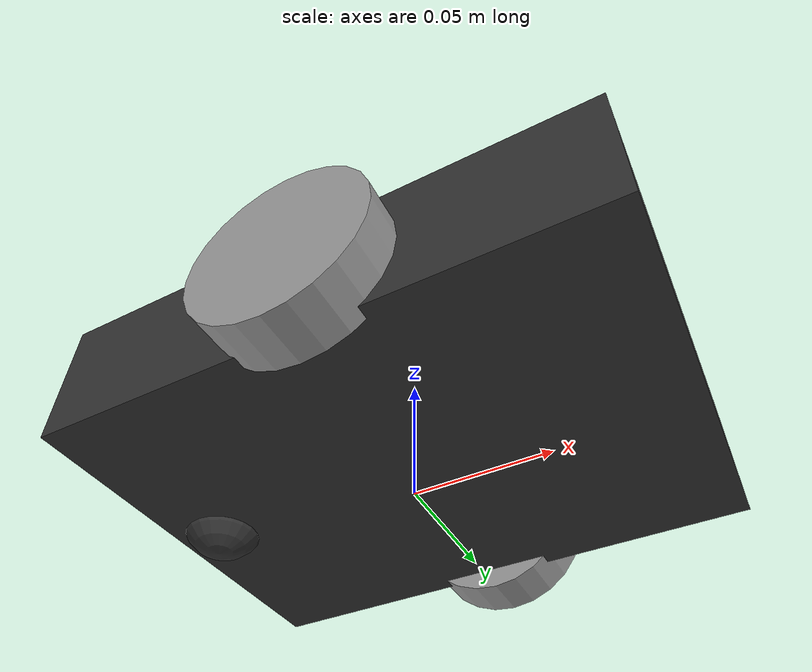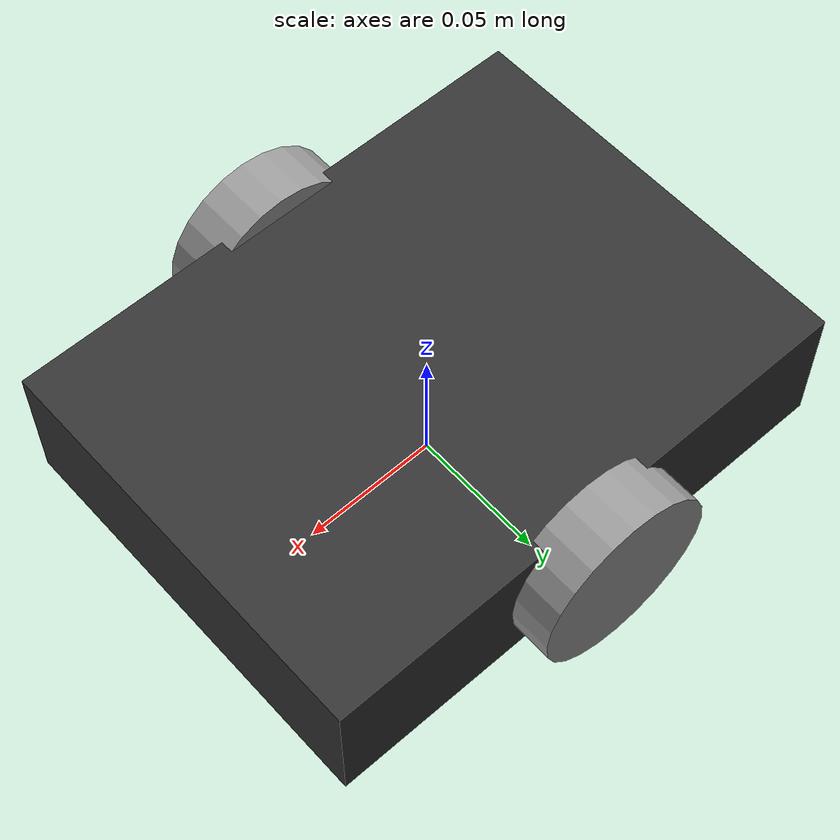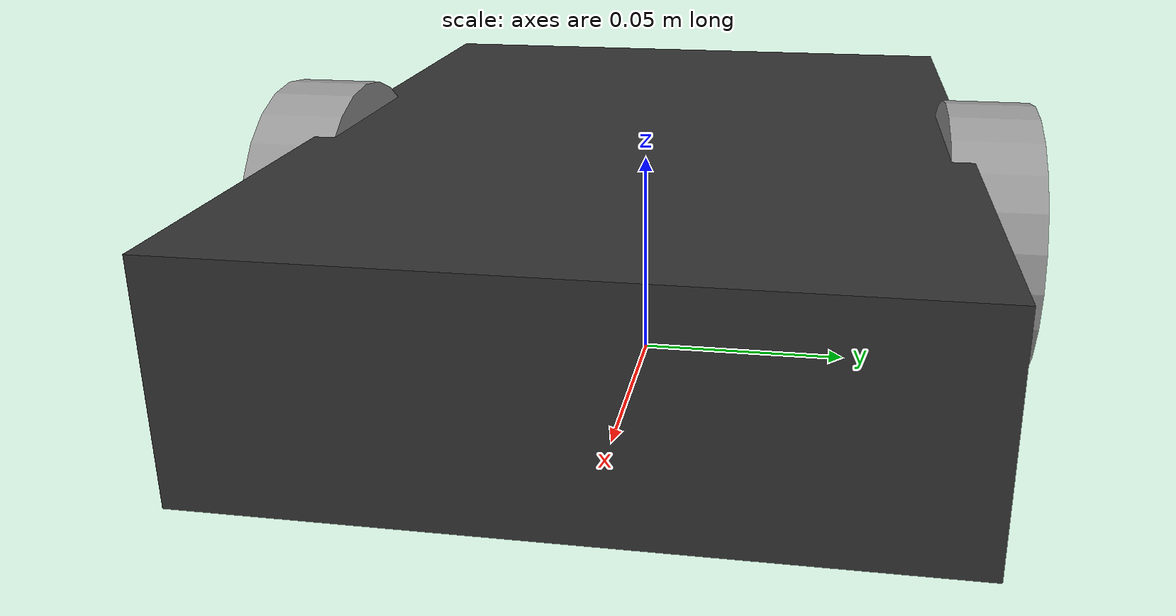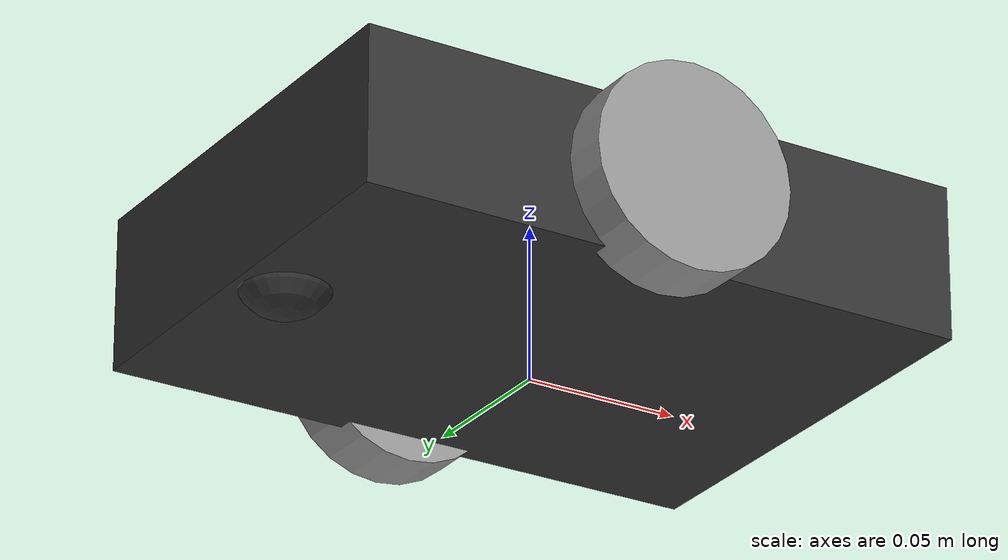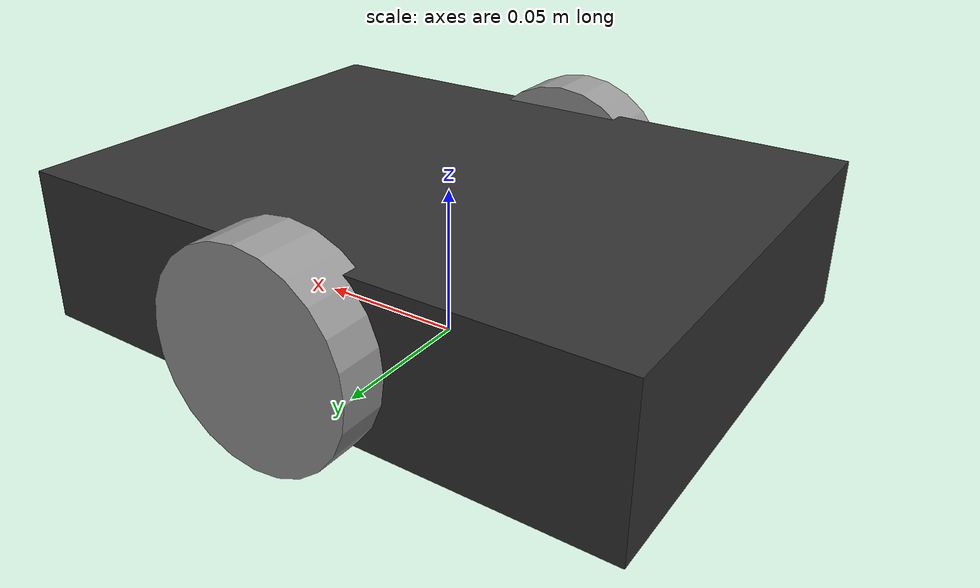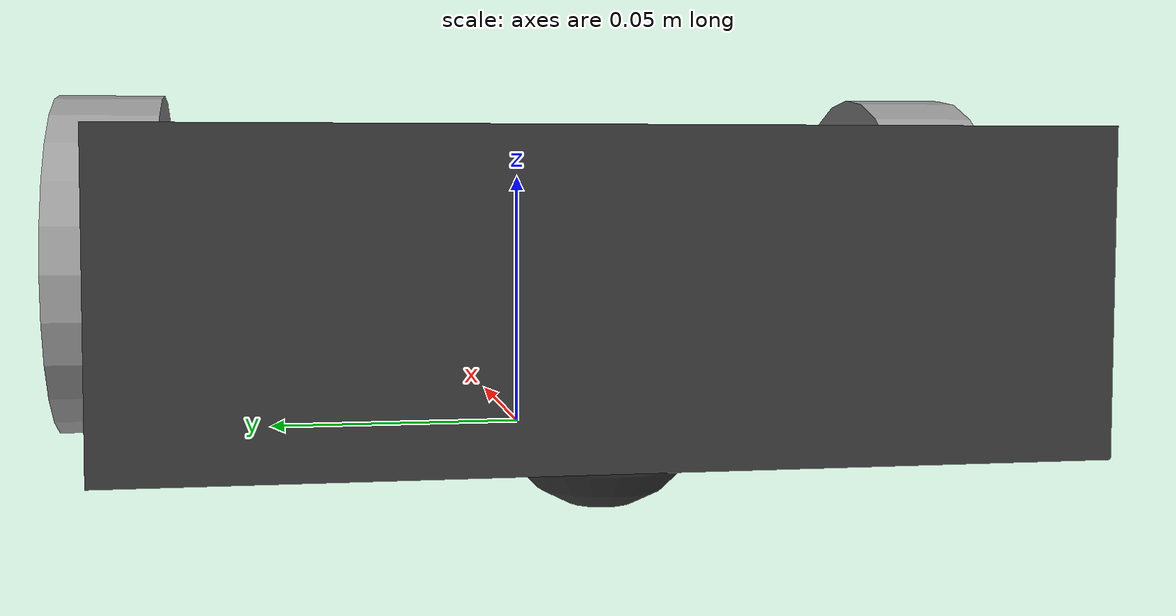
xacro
<?xml version="1.0"?>
<robot xmlns:xacro="http://www.ros.org/wiki/xacro" name="diffbot">

  <xacro:property name="wheel_radius"      value="0.033"/>   <!-- metres -->
  <xacro:property name="wheel_width"       value="0.020"/>   <!-- metres -->
  <xacro:property name="wheel_separation"  value="0.160"/>   <!-- centre to centre, metres -->
  <xacro:property name="base_length"       value="0.200"/>
  <xacro:property name="base_width"        value="0.150"/>
  <xacro:property name="base_height"       value="0.050"/>
  <xacro:property name="base_mass"         value="1.5"/>     <!-- kg -->
  <xacro:property name="wheel_mass"        value="0.1"/>

  <!-- ════════════════════════════════════════════════════════════════════════
       Inertia macros
       ════════════════════════════════════════════════════════════════════════ -->
  <xacro:macro name="box_inertia" params="m l w h">
    <inertial>
      <mass value="${m}"/>
      <inertia
        ixx="${m/12*(w*w+h*h)}" ixy="0" ixz="0"
        iyy="${m/12*(l*l+h*h)}" iyz="0"
        izz="${m/12*(l*l+w*w)}"/>
    </inertial>
  </xacro:macro>

  <xacro:macro name="cylinder_inertia" params="m r h">
    <inertial>
      <mass value="${m}"/>
      <inertia
        ixx="${m/12*(3*r*r+h*h)}" ixy="0" ixz="0"
        iyy="${m/12*(3*r*r+h*h)}" iyz="0"
        izz="${m/2*r*r}"/>
    </inertial>
  </xacro:macro>

  <!-- ════════════════════════════════════════════════════════════════════════
       Materials
       ════════════════════════════════════════════════════════════════════════ -->
  <material name="dark_grey">  <color rgba="0.2 0.2 0.2 1.0"/> </material>
  <material name="light_grey"> <color rgba="0.6 0.6 0.6 1.0"/> </material>
  <material name="blue">       <color rgba="0.0 0.4 0.8 1.0"/> </material>

  <!-- ════════════════════════════════════════════════════════════════════════
       Links
       ════════════════════════════════════════════════════════════════════════ -->

  <!-- base_footprint: projection of base_link on the ground -->
  <link name="base_footprint"/>

  <joint name="base_footprint_joint" type="fixed">
    <parent link="base_footprint"/>
    <child  link="base_link"/>
    <origin xyz="0 0 ${wheel_radius}" rpy="0 0 0"/>
  </joint>

  <!-- base_link: geometric centre of the chassis -->
  <link name="base_link">
    <visual>
      <geometry>
        <box size="${base_length} ${base_width} ${base_height}"/>
      </geometry>
      <material name="dark_grey"/>
    </visual>
    <collision>
      <geometry>
        <box size="${base_length} ${base_width} ${base_height}"/>
      </geometry>
    </collision>
    <xacro:box_inertia m="${base_mass}" l="${base_length}" w="${base_width}" h="${base_height}"/>
  </link>

  <!-- Left wheel -->
  <link name="left_wheel_link">
    <visual>
      <geometry>
        <cylinder radius="${wheel_radius}" length="${wheel_width}"/>
      </geometry>
      <material name="light_grey"/>
    </visual>
    <collision>
      <geometry>
        <cylinder radius="${wheel_radius}" length="${wheel_width}"/>
      </geometry>
    </collision>
    <xacro:cylinder_inertia m="${wheel_mass}" r="${wheel_radius}" h="${wheel_width}"/>
  </link>

  <!-- Right wheel -->
  <link name="right_wheel_link">
    <visual>
      <geometry>
        <cylinder radius="${wheel_radius}" length="${wheel_width}"/>
      </geometry>
      <material name="light_grey"/>
    </visual>
    <collision>
      <geometry>
        <cylinder radius="${wheel_radius}" length="${wheel_width}"/>
      </geometry>
    </collision>
    <xacro:cylinder_inertia m="${wheel_mass}" r="${wheel_radius}" h="${wheel_width}"/>
  </link>

  <!-- Caster wheel (passive, no joint actuated) -->
  <link name="caster_wheel_link">
    <visual>
      <geometry><sphere radius="${wheel_radius/2}"/></geometry>
      <material name="dark_grey"/>
    </visual>
    <collision>
      <geometry><sphere radius="${wheel_radius/2}"/></geometry>
    </collision>
    <inertial>
      <mass value="0.05"/>
      <inertia ixx="0.000025" ixy="0" ixz="0" iyy="0.000025" iyz="0" izz="0.000025"/>
    </inertial>
  </link>

  <!-- ════════════════════════════════════════════════════════════════════════
       Joints
       ════════════════════════════════════════════════════════════════════════ -->

  <!-- Left wheel: rotates about the Y-axis of the joint frame.
       The joint origin is rotated -90° in roll so the cylinder's Z-axis
       (its spin axis) aligns with the global Y-axis. -->
  <joint name="left_wheel_joint" type="continuous">
    <parent link="base_link"/>
    <child  link="left_wheel_link"/>
    <origin xyz="0 ${wheel_separation/2} 0" rpy="-${pi/2} 0 0"/>
    <axis xyz="0 0 1"/>
    <dynamics damping="0.01" friction="0.1"/>
  </joint>

  <!-- Right wheel: mirror of left (roll +90°) -->
  <joint name="right_wheel_joint" type="continuous">
    <parent link="base_link"/>
    <child  link="right_wheel_link"/>
    <origin xyz="0 -${wheel_separation/2} 0" rpy="${pi/2} 0 0"/>
    <axis xyz="0 0 1"/>
    <dynamics damping="0.01" friction="0.1"/>
  </joint>

  <!-- Caster (fixed ball joint — modelled as continuous with no limits) -->
  <joint name="caster_wheel_joint" type="fixed">
    <parent link="base_link"/>
    <child  link="caster_wheel_link"/>
    <origin xyz="-${base_length/2 - wheel_radius/2} 0 -${wheel_radius/2}" rpy="0 0 0"/>
  </joint>

  <!-- ════════════════════════════════════════════════════════════════════════
       ros2_control block
       ════════════════════════════════════════════════════════════════════════ -->
  <ros2_control name="DiffBotHardware" type="system">
    <hardware>
      <plugin>diffbot_hardware/DiffBotHardware</plugin>

      <!-- Serial port configuration -->
      <param name="serial_port">/dev/ttyACM0</param>
      <!-- Use /dev/esp32_diffbot if you set up the udev rule in the README -->
      <param name="baud_rate">115200</param>

      <!-- Mechanical parameters (must match ticks_per_rev_ on the ESP32) -->
      <param name="wheel_radius">0.033</param>
      <param name="wheel_separation">0.160</param>
      <param name="ticks_per_rev">1440</param>

      <!-- Maximum wheel velocity clamp sent to the ESP32 (rad/s) -->
      <param name="max_speed_rad_s">10.0</param>

      <!-- Timeout (ms) for serial readline — keep well below 1/update_rate -->
      <param name="read_timeout_ms">5</param>

      <!-- FIX #11: Velocity low-pass filter coefficient (0.0–1.0).
           α = 1.0 → no filtering.  α = 0.1 → heavy smoothing.
           Tune down if diff_drive_controller oscillates at low speed. -->
      <param name="vel_filter_alpha">0.3</param>
    </hardware>

    <!-- Joint 0: left wheel — velocity command, position + velocity state -->
    <joint name="left_wheel_joint">
      <command_interface name="velocity">
        <param name="min">-10.0</param>
        <param name="max"> 10.0</param>
      </command_interface>
      <state_interface name="position"/>
      <state_interface name="velocity"/>
    </joint>

    <!-- Joint 1: right wheel — velocity command, position + velocity state -->
    <joint name="right_wheel_joint">
      <command_interface name="velocity">
        <param name="min">-10.0</param>
        <param name="max"> 10.0</param>
      </command_interface>
      <state_interface name="position"/>
      <state_interface name="velocity"/>
    </joint>

  </ros2_control>

</robot>
